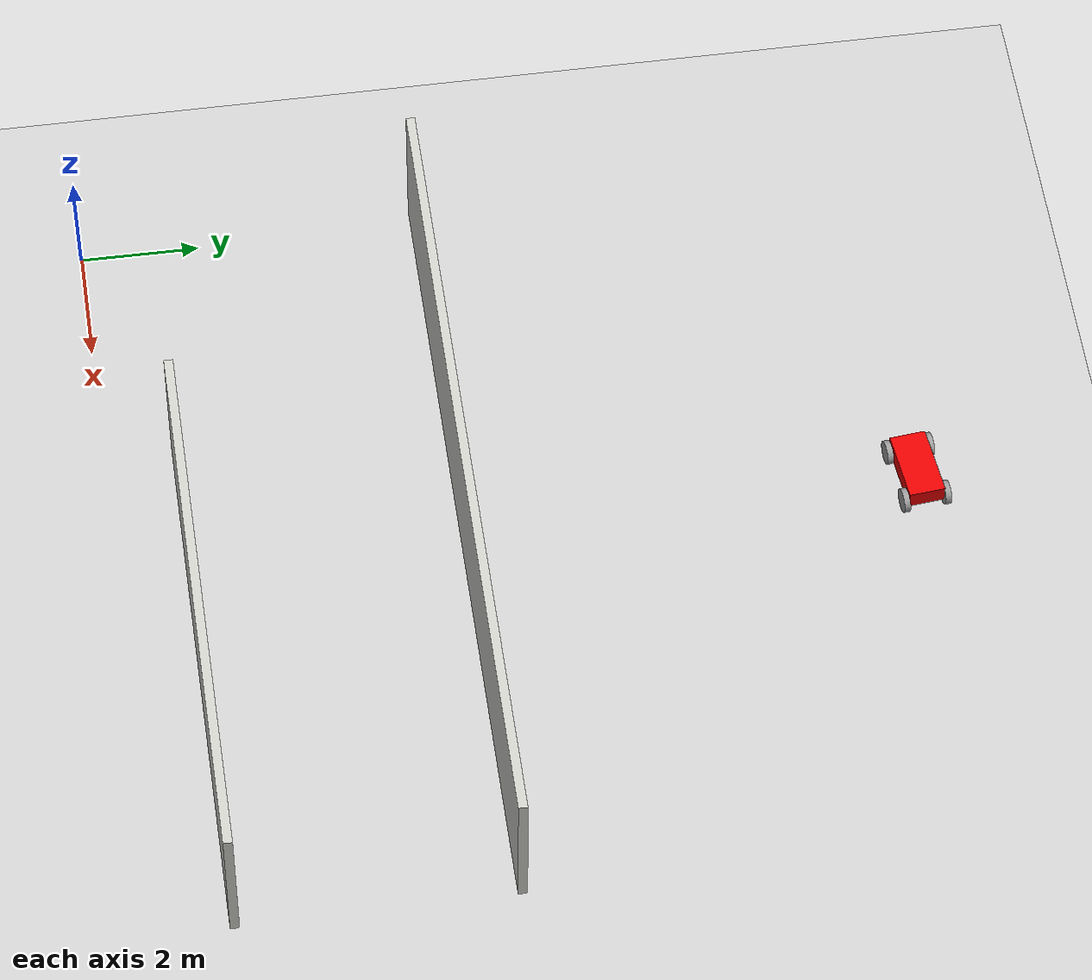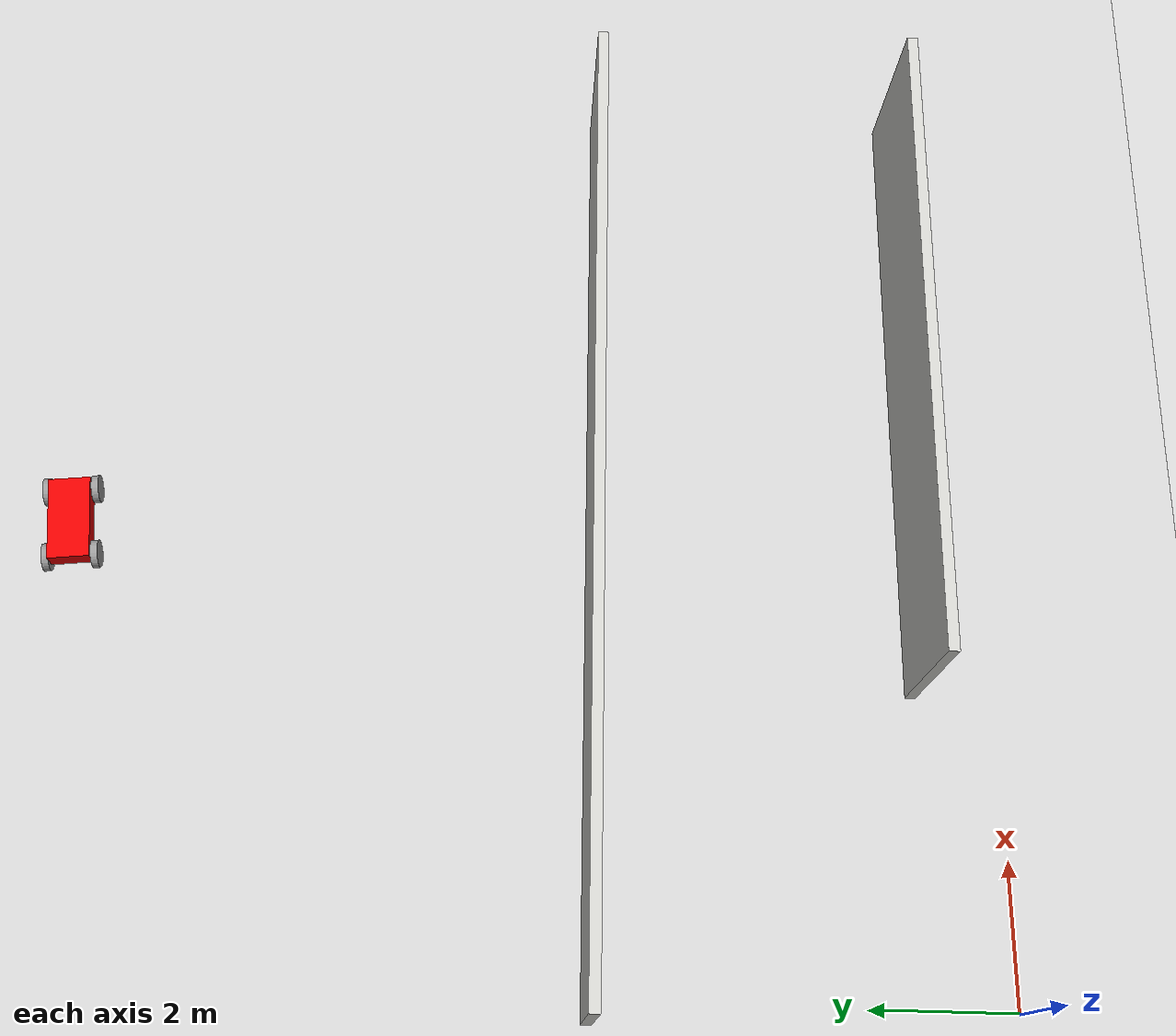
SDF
<sdf version="1.7">
 <world name="default">
  <model name="ground_plane">
   <static>1</static>
   <link name="link">
    <collision name="collision">
     <geometry><plane><normal>0 0 1</normal><size>100 100</size></plane></geometry>
     <surface>
      <contact><collide_bitmask>65535</collide_bitmask></contact>
      <friction><ode><mu>100</mu><mu2>50</mu2></ode></friction>
     </surface>
    </collision>
    <visual name="visual">
     <cast_shadows>0</cast_shadows>
     <geometry><plane><normal>0 0 1</normal><size>100 100</size></plane></geometry>
     <material>
      <script><uri>file://media/materials/scripts/gazebo.material</uri><name>Gazebo/Grey</name></script>
     </material>
    </visual>
   </link>
  </model>
  <model name="newworld">
   <link name="Wall_49">
    <pose>8.66037 0.299991 0 0 -0 0</pose>
    <visual name="Wall_49_Visual">
     <pose>0 0 1.25 0 -0 0</pose>
     <geometry><box><size>9.25 0.15 2.5</size></box></geometry>
     <material>
      <script><uri>file://media/materials/scripts/gazebo.material</uri><name>Gazebo/CeilingTiled</name></script>
      <ambient>0.435294 0.796078 0.67451 1</ambient>
      <shader type="pixel"/>
     </material>
     <meta><layer>0</layer></meta>
    </visual>
    <collision name="Wall_49_Collision">
     <pose>0 0 1.25 0 -0 0</pose>
     <geometry><box><size>9.25 0.15 2.5</size></box></geometry>
     <surface>
      <friction>
       <ode><mu>1</mu><mu2>1</mu2><fdir1>0 0 0</fdir1><slip1>0</slip1><slip2>0</slip2></ode>
       <torsional>
        <coefficient>1</coefficient>
        <patch_radius>0</patch_radius>
        <surface_radius>0</surface_radius>
        <use_patch_radius>1</use_patch_radius>
        <ode><slip>0</slip></ode>
       </torsional>
      </friction>
      <bounce><restitution_coefficient>0</restitution_coefficient><threshold>1e+06</threshold></bounce>
      <contact>
       <collide_without_contact>0</collide_without_contact>
       <collide_without_contact_bitmask>1</collide_without_contact_bitmask>
       <collide_bitmask>1</collide_bitmask>
       <ode>
        <soft_cfm>0</soft_cfm>
        <soft_erp>0.2</soft_erp>
        <kp>1e+13</kp>
        <kd>1</kd>
        <max_vel>0.01</max_vel>
        <min_depth>0</min_depth>
       </ode>
       <bullet>
        <split_impulse>1</split_impulse>
        <split_impulse_penetration_threshold>-0.01</split_impulse_penetration_threshold>
        <soft_cfm>0</soft_cfm>
        <soft_erp>0.2</soft_erp>
        <kp>1e+13</kp>
        <kd>1</kd>
       </bullet>
      </contact>
     </surface>
    </collision>
   </link>
   <link name="Wall_57">
    <pose>6.39529 4.81032 0 0 -0 3.14159</pose>
    <visual name="Wall_57_Visual">
     <pose>0 0 1.25 0 -0 0</pose>
     <geometry><box><size>13.75 0.15 2.5</size></box></geometry>
     <material>
      <script><uri>file://media/materials/scripts/gazebo.material</uri><name>Gazebo/CeilingTiled</name></script>
      <ambient>0.921569 0.807843 0.615686 1</ambient>
      <shader type="pixel"/>
     </material>
     <meta><layer>0</layer></meta>
    </visual>
    <collision name="Wall_57_Collision">
     <pose>0 0 1.25 0 -0 0</pose>
     <geometry><box><size>13.75 0.15 2.5</size></box></geometry>
     <surface>
      <friction>
       <ode><mu>1</mu><mu2>1</mu2><fdir1>0 0 0</fdir1><slip1>0</slip1><slip2>0</slip2></ode>
       <torsional>
        <coefficient>1</coefficient>
        <patch_radius>0</patch_radius>
        <surface_radius>0</surface_radius>
        <use_patch_radius>1</use_patch_radius>
        <ode><slip>0</slip></ode>
       </torsional>
      </friction>
      <bounce><restitution_coefficient>0</restitution_coefficient><threshold>1e+06</threshold></bounce>
      <contact>
       <collide_without_contact>0</collide_without_contact>
       <collide_without_contact_bitmask>1</collide_without_contact_bitmask>
       <collide_bitmask>1</collide_bitmask>
       <ode>
        <soft_cfm>0</soft_cfm>
        <soft_erp>0.2</soft_erp>
        <kp>1e+13</kp>
        <kd>1</kd>
        <max_vel>0.01</max_vel>
        <min_depth>0</min_depth>
       </ode>
       <bullet>
        <split_impulse>1</split_impulse>
        <split_impulse_penetration_threshold>-0.01</split_impulse_penetration_threshold>
        <soft_cfm>0</soft_cfm>
        <soft_erp>0.2</soft_erp>
        <kp>1e+13</kp>
        <kd>1</kd>
       </bullet>
      </contact>
     </surface>
    </collision>
   </link>
   <static>1</static>
   <pose>0.193711 0.903984 0 0 -0 0</pose>
  </model>
  <model name="car">
   <link name="link_0">
    <pose>0 -2e-06 0.088889 0 -0 0</pose>
    <inertial>
     <mass>1</mass>
     <inertia>
      <ixx>0.166667</ixx>
      <ixy>0</ixy>
      <ixz>0</ixz>
      <iyy>0.166667</iyy>
      <iyz>0</iyz>
      <izz>0.166667</izz>
     </inertia>
    </inertial>
    <visual name="visual">
     <geometry><box><size>1.2 0.6 0.3</size></box></geometry>
     <material>
      <lighting>1</lighting>
      <script><uri>file://media/materials/scripts/gazebo.material</uri><name>Gazebo/Grey</name></script>
      <shader type="pixel"><normal_map>__default__</normal_map></shader>
      <ambient>0.9 0 0 1</ambient>
      <diffuse>0.7 0.7 0.7 1</diffuse>
      <specular>0.01 0.01 0.01 1</specular>
      <emissive>0 0 0 1</emissive>
     </material>
    </visual>
    <collision name="collision">
     <geometry><box><size>1.2 0.6 0.3</size></box></geometry>
     <surface>
      <friction>
       <ode><mu>1</mu><mu2>1</mu2><fdir1>0 0 0</fdir1><slip1>0</slip1><slip2>0</slip2></ode>
       <torsional>
        <coefficient>1</coefficient>
        <patch_radius>0</patch_radius>
        <surface_radius>0</surface_radius>
        <use_patch_radius>1</use_patch_radius>
        <ode><slip>0</slip></ode>
       </torsional>
      </friction>
      <bounce><restitution_coefficient>0</restitution_coefficient><threshold>1e+06</threshold></bounce>
      <contact>
       <collide_without_contact>0</collide_without_contact>
       <collide_without_contact_bitmask>1</collide_without_contact_bitmask>
       <collide_bitmask>1</collide_bitmask>
       <ode>
        <soft_cfm>0</soft_cfm>
        <soft_erp>0.2</soft_erp>
        <kp>1e+13</kp>
        <kd>1</kd>
        <max_vel>0.01</max_vel>
        <min_depth>0</min_depth>
       </ode>
       <bullet>
        <split_impulse>1</split_impulse>
        <split_impulse_penetration_threshold>-0.01</split_impulse_penetration_threshold>
        <soft_cfm>0</soft_cfm>
        <soft_erp>0.2</soft_erp>
        <kp>1e+13</kp>
        <kd>1</kd>
       </bullet>
      </contact>
     </surface>
    </collision>
   </link>
   <link name="link_1">
    <pose>-0.5 -0.250002 -0.011111 0 -0 0</pose>
    <inertial>
     <mass>1</mass>
     <inertia>
      <ixx>0.166667</ixx>
      <ixy>0</ixy>
      <ixz>0</ixz>
      <iyy>0.166667</iyy>
      <iyz>0</iyz>
      <izz>0.166667</izz>
     </inertia>
    </inertial>
    <visual name="visual">
     <geometry><box><size>0.1 0.1 0.1</size></box></geometry>
     <material>
      <lighting>1</lighting>
      <script><uri>file://media/materials/scripts/gazebo.material</uri><name>Gazebo/Grey</name></script>
      <shader type="pixel"><normal_map>__default__</normal_map></shader>
      <ambient>0.9 0.9 0.9 1</ambient>
      <diffuse>0.7 0.7 0.7 1</diffuse>
      <specular>0.01 0.01 0.01 1</specular>
      <emissive>0 0 0 1</emissive>
     </material>
    </visual>
    <collision name="collision">
     <geometry><box><size>0.1 0.1 0.1</size></box></geometry>
     <surface>
      <friction>
       <ode><mu>1</mu><mu2>1</mu2><fdir1>0 0 0</fdir1><slip1>0</slip1><slip2>0</slip2></ode>
       <torsional>
        <coefficient>1</coefficient>
        <patch_radius>0</patch_radius>
        <surface_radius>0</surface_radius>
        <use_patch_radius>1</use_patch_radius>
        <ode><slip>0</slip></ode>
       </torsional>
      </friction>
      <bounce><restitution_coefficient>0</restitution_coefficient><threshold>1e+06</threshold></bounce>
      <contact>
       <collide_without_contact>0</collide_without_contact>
       <collide_without_contact_bitmask>1</collide_without_contact_bitmask>
       <collide_bitmask>1</collide_bitmask>
       <ode>
        <soft_cfm>0</soft_cfm>
        <soft_erp>0.2</soft_erp>
        <kp>1e+13</kp>
        <kd>1</kd>
        <max_vel>0.01</max_vel>
        <min_depth>0</min_depth>
       </ode>
       <bullet>
        <split_impulse>1</split_impulse>
        <split_impulse_penetration_threshold>-0.01</split_impulse_penetration_threshold>
        <soft_cfm>0</soft_cfm>
        <soft_erp>0.2</soft_erp>
        <kp>1e+13</kp>
        <kd>1</kd>
       </bullet>
      </contact>
     </surface>
    </collision>
   </link>
   <link name="link_1_clone">
    <pose>-0.5 0.249998 -0.011111 0 -0 0</pose>
    <inertial>
     <mass>1</mass>
     <inertia>
      <ixx>0.166667</ixx>
      <ixy>0</ixy>
      <ixz>0</ixz>
      <iyy>0.166667</iyy>
      <iyz>0</iyz>
      <izz>0.166667</izz>
     </inertia>
    </inertial>
    <visual name="visual">
     <geometry><box><size>0.1 0.1 0.1</size></box></geometry>
     <material>
      <lighting>1</lighting>
      <script><uri>file://media/materials/scripts/gazebo.material</uri><name>Gazebo/Grey</name></script>
      <shader type="pixel"><normal_map>__default__</normal_map></shader>
      <ambient>0.9 0.9 0.9 1</ambient>
      <diffuse>0.7 0.7 0.7 1</diffuse>
      <specular>0.01 0.01 0.01 1</specular>
      <emissive>0 0 0 1</emissive>
     </material>
    </visual>
    <collision name="collision">
     <geometry><box><size>0.1 0.1 0.1</size></box></geometry>
     <surface>
      <friction>
       <ode><mu>1</mu><mu2>1</mu2><fdir1>0 0 0</fdir1><slip1>0</slip1><slip2>0</slip2></ode>
       <torsional>
        <coefficient>1</coefficient>
        <patch_radius>0</patch_radius>
        <surface_radius>0</surface_radius>
        <use_patch_radius>1</use_patch_radius>
        <ode><slip>0</slip></ode>
       </torsional>
      </friction>
      <bounce><restitution_coefficient>0</restitution_coefficient><threshold>1e+06</threshold></bounce>
      <contact>
       <collide_without_contact>0</collide_without_contact>
       <collide_without_contact_bitmask>1</collide_without_contact_bitmask>
       <collide_bitmask>1</collide_bitmask>
       <ode>
        <soft_cfm>0</soft_cfm>
        <soft_erp>0.2</soft_erp>
        <kp>1e+13</kp>
        <kd>1</kd>
        <max_vel>0.01</max_vel>
        <min_depth>0</min_depth>
       </ode>
       <bullet>
        <split_impulse>1</split_impulse>
        <split_impulse_penetration_threshold>-0.01</split_impulse_penetration_threshold>
        <soft_cfm>0</soft_cfm>
        <soft_erp>0.2</soft_erp>
        <kp>1e+13</kp>
        <kd>1</kd>
       </bullet>
      </contact>
     </surface>
    </collision>
   </link>
   <link name="link_1_clone_0">
    <pose>0.5 -0.250002 -0.011111 0 -0 0</pose>
    <inertial>
     <mass>1</mass>
     <inertia>
      <ixx>0.166667</ixx>
      <ixy>0</ixy>
      <ixz>0</ixz>
      <iyy>0.166667</iyy>
      <iyz>0</iyz>
      <izz>0.166667</izz>
     </inertia>
    </inertial>
    <visual name="visual">
     <geometry><box><size>0.1 0.1 0.1</size></box></geometry>
     <material>
      <lighting>1</lighting>
      <script><uri>file://media/materials/scripts/gazebo.material</uri><name>Gazebo/Grey</name></script>
      <shader type="pixel"><normal_map>__default__</normal_map></shader>
      <ambient>0.3 0.3 0.3 1</ambient>
      <diffuse>0.7 0.7 0.7 1</diffuse>
      <specular>0.01 0.01 0.01 1</specular>
      <emissive>0 0 0 1</emissive>
     </material>
    </visual>
    <collision name="collision">
     <geometry><box><size>0.1 0.1 0.1</size></box></geometry>
     <surface>
      <friction>
       <ode><mu>1</mu><mu2>1</mu2><fdir1>0 0 0</fdir1><slip1>0</slip1><slip2>0</slip2></ode>
       <torsional>
        <coefficient>1</coefficient>
        <patch_radius>0</patch_radius>
        <surface_radius>0</surface_radius>
        <use_patch_radius>1</use_patch_radius>
        <ode><slip>0</slip></ode>
       </torsional>
      </friction>
      <bounce><restitution_coefficient>0</restitution_coefficient><threshold>1e+06</threshold></bounce>
      <contact>
       <collide_without_contact>0</collide_without_contact>
       <collide_without_contact_bitmask>1</collide_without_contact_bitmask>
       <collide_bitmask>1</collide_bitmask>
       <ode>
        <soft_cfm>0</soft_cfm>
        <soft_erp>0.2</soft_erp>
        <kp>1e+13</kp>
        <kd>1</kd>
        <max_vel>0.01</max_vel>
        <min_depth>0</min_depth>
       </ode>
       <bullet>
        <split_impulse>1</split_impulse>
        <split_impulse_penetration_threshold>-0.01</split_impulse_penetration_threshold>
        <soft_cfm>0</soft_cfm>
        <soft_erp>0.2</soft_erp>
        <kp>1e+13</kp>
        <kd>1</kd>
       </bullet>
      </contact>
     </surface>
    </collision>
   </link>
   <link name="link_1_clone_1">
    <pose>0.5 0.249998 -0.011111 0 -0 0</pose>
    <inertial>
     <mass>1</mass>
     <inertia>
      <ixx>0.166667</ixx>
      <ixy>0</ixy>
      <ixz>0</ixz>
      <iyy>0.166667</iyy>
      <iyz>0</iyz>
      <izz>0.166667</izz>
     </inertia>
    </inertial>
    <visual name="visual">
     <geometry><box><size>0.1 0.1 0.1</size></box></geometry>
     <material>
      <lighting>1</lighting>
      <script><uri>file://media/materials/scripts/gazebo.material</uri><name>Gazebo/Grey</name></script>
      <shader type="pixel"><normal_map>__default__</normal_map></shader>
      <ambient>0.9 0.9 0.9 1</ambient>
      <diffuse>0.7 0.7 0.7 1</diffuse>
      <specular>0.01 0.01 0.01 1</specular>
      <emissive>0 0 0 1</emissive>
     </material>
    </visual>
    <collision name="collision">
     <geometry><box><size>0.1 0.1 0.1</size></box></geometry>
     <surface>
      <friction>
       <ode><mu>1</mu><mu2>1</mu2><fdir1>0 0 0</fdir1><slip1>0</slip1><slip2>0</slip2></ode>
       <torsional>
        <coefficient>1</coefficient>
        <patch_radius>0</patch_radius>
        <surface_radius>0</surface_radius>
        <use_patch_radius>1</use_patch_radius>
        <ode><slip>0</slip></ode>
       </torsional>
      </friction>
      <bounce><restitution_coefficient>0</restitution_coefficient><threshold>1e+06</threshold></bounce>
      <contact>
       <collide_without_contact>0</collide_without_contact>
       <collide_without_contact_bitmask>1</collide_without_contact_bitmask>
       <collide_bitmask>1</collide_bitmask>
       <ode>
        <soft_cfm>0</soft_cfm>
        <soft_erp>0.2</soft_erp>
        <kp>1e+13</kp>
        <kd>1</kd>
        <max_vel>0.01</max_vel>
        <min_depth>0</min_depth>
       </ode>
       <bullet>
        <split_impulse>1</split_impulse>
        <split_impulse_penetration_threshold>-0.01</split_impulse_penetration_threshold>
        <soft_cfm>0</soft_cfm>
        <soft_erp>0.2</soft_erp>
        <kp>1e+13</kp>
        <kd>1</kd>
       </bullet>
      </contact>
     </surface>
    </collision>
   </link>
   <link name="link_2">
    <pose>-0.5 -0.350002 -0.011111 0 -0 0</pose>
    <inertial>
     <mass>1</mass>
     <inertia><ixx>0.145833</ixx><ixy>0</ixy><ixz>0</ixz><iyy>0.145833</iyy><iyz>0</iyz><izz>0.125</izz></inertia>
    </inertial>
    <visual name="visual">
     <pose>0 0 0 1.5707 -0 0</pose>
     <geometry><cylinder><radius>0.2</radius><length>0.1</length></cylinder></geometry>
     <material>
      <lighting>1</lighting>
      <script><uri>file://media/materials/scripts/gazebo.material</uri><name>Gazebo/Grey</name></script>
      <shader type="pixel"><normal_map>__default__</normal_map></shader>
      <ambient>0.9 0.9 0.9 1</ambient>
      <diffuse>0.7 0.7 0.7 1</diffuse>
      <specular>0.01 0.01 0.01 1</specular>
      <emissive>0 0 0 1</emissive>
     </material>
    </visual>
    <collision name="collision">
     <pose>0 0 0 1.5707 -0 0</pose>
     <geometry><cylinder><radius>0.2</radius><length>0.1</length></cylinder></geometry>
     <surface>
      <friction>
       <ode><mu>1</mu><mu2>1</mu2><fdir1>0 0 0</fdir1><slip1>0</slip1><slip2>0</slip2></ode>
       <torsional>
        <coefficient>1</coefficient>
        <patch_radius>0</patch_radius>
        <surface_radius>0</surface_radius>
        <use_patch_radius>1</use_patch_radius>
        <ode><slip>0</slip></ode>
       </torsional>
      </friction>
      <bounce><restitution_coefficient>0</restitution_coefficient><threshold>1e+06</threshold></bounce>
      <contact>
       <collide_without_contact>0</collide_without_contact>
       <collide_without_contact_bitmask>1</collide_without_contact_bitmask>
       <collide_bitmask>1</collide_bitmask>
       <ode>
        <soft_cfm>0</soft_cfm>
        <soft_erp>0.2</soft_erp>
        <kp>1e+13</kp>
        <kd>1</kd>
        <max_vel>0.01</max_vel>
        <min_depth>0</min_depth>
       </ode>
       <bullet>
        <split_impulse>1</split_impulse>
        <split_impulse_penetration_threshold>-0.01</split_impulse_penetration_threshold>
        <soft_cfm>0</soft_cfm>
        <soft_erp>0.2</soft_erp>
        <kp>1e+13</kp>
        <kd>1</kd>
       </bullet>
      </contact>
     </surface>
    </collision>
   </link>
   <link name="link_2_clone">
    <pose>-0.5 0.349998 -0.011111 0 -0 0</pose>
    <inertial>
     <mass>1</mass>
     <inertia><ixx>0.145833</ixx><ixy>0</ixy><ixz>0</ixz><iyy>0.145833</iyy><iyz>0</iyz><izz>0.125</izz></inertia>
    </inertial>
    <visual name="visual">
     <pose>0 0 0 1.5707 -0 0</pose>
     <geometry><cylinder><radius>0.2</radius><length>0.1</length></cylinder></geometry>
     <material>
      <lighting>1</lighting>
      <script><uri>file://media/materials/scripts/gazebo.material</uri><name>Gazebo/Grey</name></script>
      <shader type="pixel"><normal_map>__default__</normal_map></shader>
      <ambient>0.9 0.9 0.9 1</ambient>
      <diffuse>0.7 0.7 0.7 1</diffuse>
      <specular>0.01 0.01 0.01 1</specular>
      <emissive>0 0 0 1</emissive>
     </material>
    </visual>
    <collision name="collision">
     <pose>0 0 0 1.5707 -0 0</pose>
     <geometry><cylinder><radius>0.2</radius><length>0.1</length></cylinder></geometry>
     <surface>
      <friction>
       <ode><mu>1</mu><mu2>1</mu2><fdir1>0 0 0</fdir1><slip1>0</slip1><slip2>0</slip2></ode>
       <torsional>
        <coefficient>1</coefficient>
        <patch_radius>0</patch_radius>
        <surface_radius>0</surface_radius>
        <use_patch_radius>1</use_patch_radius>
        <ode><slip>0</slip></ode>
       </torsional>
      </friction>
      <bounce><restitution_coefficient>0</restitution_coefficient><threshold>1e+06</threshold></bounce>
      <contact>
       <collide_without_contact>0</collide_without_contact>
       <collide_without_contact_bitmask>1</collide_without_contact_bitmask>
       <collide_bitmask>1</collide_bitmask>
       <ode>
        <soft_cfm>0</soft_cfm>
        <soft_erp>0.2</soft_erp>
        <kp>1e+13</kp>
        <kd>1</kd>
        <max_vel>0.01</max_vel>
        <min_depth>0</min_depth>
       </ode>
       <bullet>
        <split_impulse>1</split_impulse>
        <split_impulse_penetration_threshold>-0.01</split_impulse_penetration_threshold>
        <soft_cfm>0</soft_cfm>
        <soft_erp>0.2</soft_erp>
        <kp>1e+13</kp>
        <kd>1</kd>
       </bullet>
      </contact>
     </surface>
    </collision>
   </link>
   <link name="link_2_clone_0">
    <pose>0.5 -0.350021 -0.011111 0 -0 0</pose>
    <inertial>
     <mass>1</mass>
     <inertia><ixx>0.145833</ixx><ixy>0</ixy><ixz>0</ixz><iyy>0.145833</iyy><iyz>0</iyz><izz>0.125</izz></inertia>
    </inertial>
    <visual name="visual">
     <pose>0 0 0 1.5707 -0 0</pose>
     <geometry><cylinder><radius>0.2</radius><length>0.1</length></cylinder></geometry>
     <material>
      <lighting>1</lighting>
      <script><uri>file://media/materials/scripts/gazebo.material</uri><name>Gazebo/Grey</name></script>
      <shader type="pixel"><normal_map>__default__</normal_map></shader>
      <ambient>0.9 0.9 0.9 1</ambient>
      <diffuse>0.7 0.7 0.7 1</diffuse>
      <specular>0.01 0.01 0.01 1</specular>
      <emissive>0 0 0 1</emissive>
     </material>
    </visual>
    <collision name="collision">
     <pose>0 0 0 1.5707 -0 0</pose>
     <geometry><cylinder><radius>0.2</radius><length>0.1</length></cylinder></geometry>
     <surface>
      <friction>
       <ode><mu>1</mu><mu2>1</mu2><fdir1>0 0 0</fdir1><slip1>0</slip1><slip2>0</slip2></ode>
       <torsional>
        <coefficient>1</coefficient>
        <patch_radius>0</patch_radius>
        <surface_radius>0</surface_radius>
        <use_patch_radius>1</use_patch_radius>
        <ode><slip>0</slip></ode>
       </torsional>
      </friction>
      <bounce><restitution_coefficient>0</restitution_coefficient><threshold>1e+06</threshold></bounce>
      <contact>
       <collide_without_contact>0</collide_without_contact>
       <collide_without_contact_bitmask>1</collide_without_contact_bitmask>
       <collide_bitmask>1</collide_bitmask>
       <ode>
        <soft_cfm>0</soft_cfm>
        <soft_erp>0.2</soft_erp>
        <kp>1e+13</kp>
        <kd>1</kd>
        <max_vel>0.01</max_vel>
        <min_depth>0</min_depth>
       </ode>
       <bullet>
        <split_impulse>1</split_impulse>
        <split_impulse_penetration_threshold>-0.01</split_impulse_penetration_threshold>
        <soft_cfm>0</soft_cfm>
        <soft_erp>0.2</soft_erp>
        <kp>1e+13</kp>
        <kd>1</kd>
       </bullet>
      </contact>
     </surface>
    </collision>
   </link>
   <link name="link_2_clone_1">
    <pose>0.5 0.350017 -0.011111 0 -0 0</pose>
    <inertial>
     <mass>1</mass>
     <inertia><ixx>0.145833</ixx><ixy>0</ixy><ixz>0</ixz><iyy>0.145833</iyy><iyz>0</iyz><izz>0.125</izz></inertia>
    </inertial>
    <visual name="visual">
     <pose>0 0 0 1.5707 -0 0</pose>
     <geometry><cylinder><radius>0.2</radius><length>0.1</length></cylinder></geometry>
     <material>
      <lighting>1</lighting>
      <script><uri>file://media/materials/scripts/gazebo.material</uri><name>Gazebo/Grey</name></script>
      <shader type="pixel"><normal_map>__default__</normal_map></shader>
      <ambient>0.9 0.9 0.9 1</ambient>
      <diffuse>0.7 0.7 0.7 1</diffuse>
      <specular>0.01 0.01 0.01 1</specular>
      <emissive>0 0 0 1</emissive>
     </material>
    </visual>
    <collision name="collision">
     <pose>0 0 0 1.5707 -0 0</pose>
     <geometry><cylinder><radius>0.2</radius><length>0.1</length></cylinder></geometry>
     <surface>
      <friction>
       <ode><mu>1</mu><mu2>1</mu2><fdir1>0 0 0</fdir1><slip1>0</slip1><slip2>0</slip2></ode>
       <torsional>
        <coefficient>1</coefficient>
        <patch_radius>0</patch_radius>
        <surface_radius>0</surface_radius>
        <use_patch_radius>1</use_patch_radius>
        <ode><slip>0</slip></ode>
       </torsional>
      </friction>
      <bounce><restitution_coefficient>0</restitution_coefficient><threshold>1e+06</threshold></bounce>
      <contact>
       <collide_without_contact>0</collide_without_contact>
       <collide_without_contact_bitmask>1</collide_without_contact_bitmask>
       <collide_bitmask>1</collide_bitmask>
       <ode>
        <soft_cfm>0</soft_cfm>
        <soft_erp>0.2</soft_erp>
        <kp>1e+13</kp>
        <kd>1</kd>
        <max_vel>0.01</max_vel>
        <min_depth>0</min_depth>
       </ode>
       <bullet>
        <split_impulse>1</split_impulse>
        <split_impulse_penetration_threshold>-0.01</split_impulse_penetration_threshold>
        <soft_cfm>0</soft_cfm>
        <soft_erp>0.2</soft_erp>
        <kp>1e+13</kp>
        <kd>1</kd>
       </bullet>
      </contact>
     </surface>
    </collision>
   </link>
   <joint name="link_0_JOINT_0" type="fixed">
    <parent>link_0</parent>
    <child>link_1</child>
    <physics>
     <ode><limit><cfm>0</cfm><erp>0.2</erp></limit><suspension><cfm>0</cfm><erp>0.2</erp></suspension></ode>
    </physics>
   </joint>
   <joint name="link_0_JOINT_1" type="fixed">
    <parent>link_0</parent>
    <child>link_1_clone</child>
    <physics>
     <ode><limit><cfm>0</cfm><erp>0.2</erp></limit><suspension><cfm>0</cfm><erp>0.2</erp></suspension></ode>
    </physics>
   </joint>
   <joint name="link_0_JOINT_2" type="fixed">
    <parent>link_0</parent>
    <child>link_1_clone_0</child>
    <physics>
     <ode><limit><cfm>0</cfm><erp>0.2</erp></limit><suspension><cfm>0</cfm><erp>0.2</erp></suspension></ode>
    </physics>
   </joint>
   <joint name="link_0_JOINT_3" type="fixed">
    <parent>link_0</parent>
    <child>link_1_clone_1</child>
    <physics>
     <ode><limit><cfm>0</cfm><erp>0.2</erp></limit><suspension><cfm>0</cfm><erp>0.2</erp></suspension></ode>
    </physics>
   </joint>
   <joint name="link_1_JOINT_4" type="revolute">
    <parent>link_1</parent>
    <child>link_2</child>
    <axis>
     <xyz>0 1 0</xyz>
     <limit>
      <lower>-1.79769e+308</lower>
      <upper>1.79769e+308</upper>
      <effort>-1</effort>
      <velocity>-1</velocity>
     </limit>
     <dynamics>
      <spring_reference>0</spring_reference>
      <spring_stiffness>0</spring_stiffness>
      <damping>0</damping>
      <friction>0</friction>
     </dynamics>
    </axis>
    <physics>
     <ode><limit><cfm>0</cfm><erp>0.2</erp></limit><suspension><cfm>0</cfm><erp>0.2</erp></suspension></ode>
    </physics>
   </joint>
   <joint name="link_1_clone_0_JOINT_7" type="revolute">
    <parent>link_1_clone_0</parent>
    <child>link_2_clone_0</child>
    <axis>
     <xyz>0 1 0</xyz>
     <limit>
      <lower>-1.79769e+308</lower>
      <upper>1.79769e+308</upper>
      <effort>-1</effort>
      <velocity>-1</velocity>
     </limit>
     <dynamics>
      <spring_reference>0</spring_reference>
      <spring_stiffness>0</spring_stiffness>
      <damping>0</damping>
     </dynamics>
    </axis>
    <physics>
     <ode><limit><cfm>0</cfm><erp>0.2</erp></limit><suspension><cfm>0</cfm><erp>0.2</erp></suspension></ode>
    </physics>
   </joint>
   <joint name="link_1_clone_1_JOINT_8" type="revolute">
    <parent>link_1_clone_1</parent>
    <child>link_2_clone_1</child>
    <pose>0 0 0 0 0.03 0.02</pose>
    <axis>
     <xyz>0 1 0</xyz>
     <limit>
      <lower>-1.79769e+308</lower>
      <upper>1.79769e+308</upper>
      <effort>-1</effort>
      <velocity>-1</velocity>
     </limit>
     <dynamics>
      <spring_reference>0</spring_reference>
      <spring_stiffness>0</spring_stiffness>
      <damping>0</damping>
      <friction>0</friction>
     </dynamics>
    </axis>
    <physics>
     <ode><limit><cfm>0</cfm><erp>0.2</erp></limit><suspension><cfm>0</cfm><erp>0.2</erp></suspension></ode>
    </physics>
   </joint>
   <joint name="link_1_clone_JOINT_6" type="revolute">
    <parent>link_1_clone</parent>
    <child>link_2_clone</child>
    <axis>
     <xyz>0 1 0</xyz>
     <limit>
      <lower>-1.79769e+308</lower>
      <upper>1.79769e+308</upper>
      <effort>-1</effort>
      <velocity>-1</velocity>
     </limit>
     <dynamics>
      <spring_reference>0</spring_reference>
      <spring_stiffness>0</spring_stiffness>
      <damping>0</damping>
     </dynamics>
    </axis>
    <physics>
     <ode><limit><cfm>0</cfm><erp>0.2</erp></limit><suspension><cfm>0</cfm><erp>0.2</erp></suspension></ode>
    </physics>
   </joint>
   <static>0</static>
   <pose>6.45015 13.2286 0.211114 0 -0 0.099998</pose>
  </model>
 </world>
</sdf>
